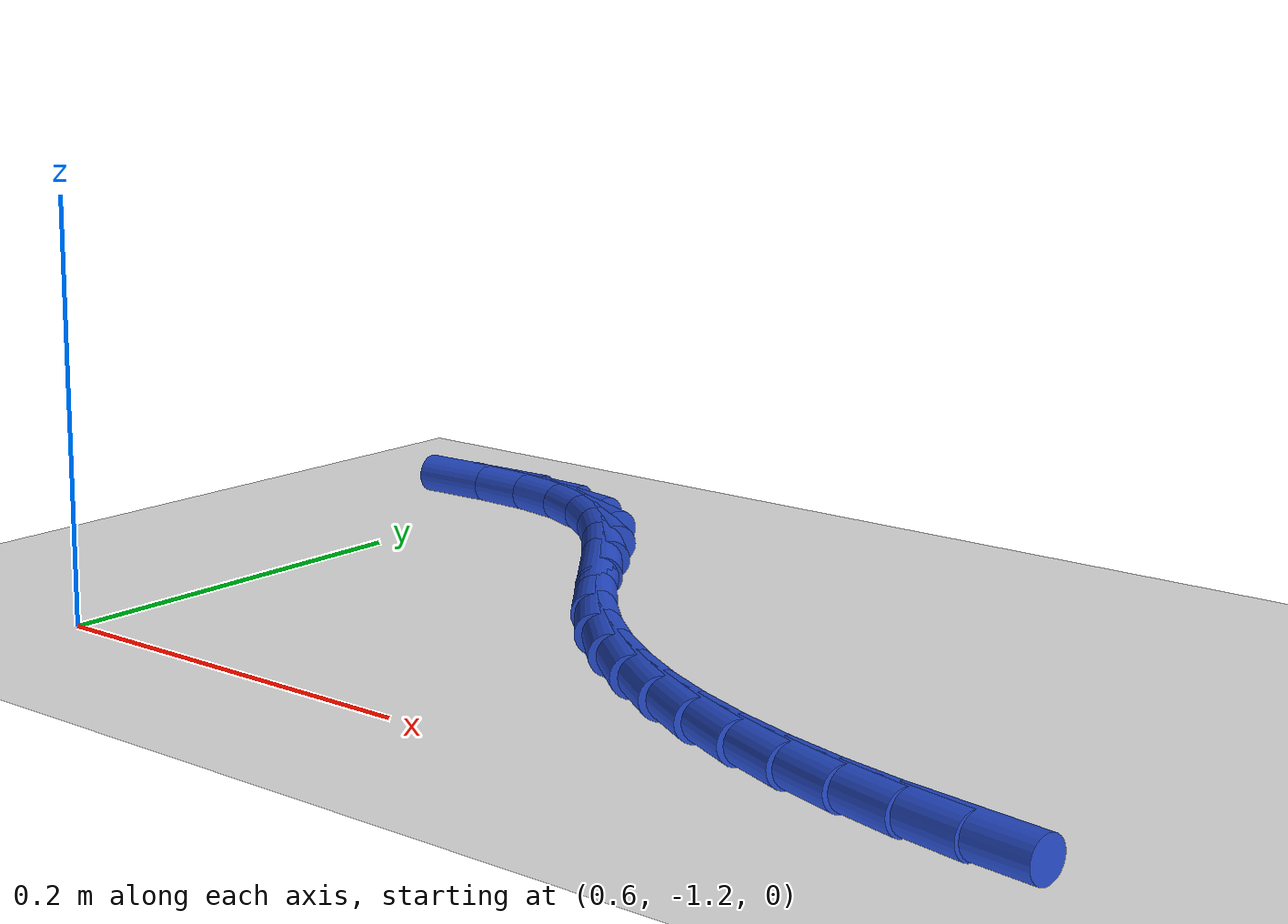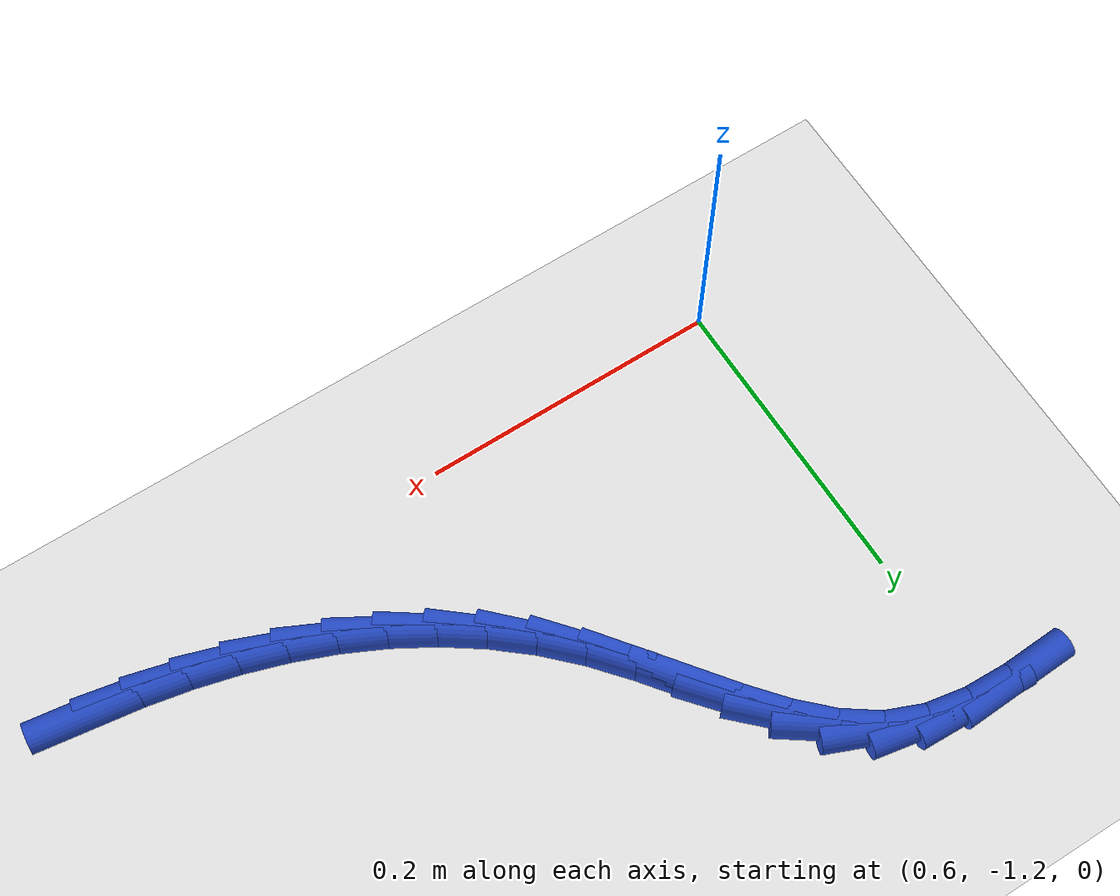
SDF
<sdf version="1.6">
 <world name="default">
  <model name="ground_plane">
   <static>1</static>
   <link name="link">
    <collision name="collision">
     <geometry><plane><normal>0 0 1</normal><size>100 100</size></plane></geometry>
     <surface><friction><ode><mu>100</mu><mu2>50</mu2></ode></friction></surface>
    </collision>
    <visual name="visual">
     <cast_shadows>0</cast_shadows>
     <geometry><plane><normal>0 0 1</normal><size>100 100</size></plane></geometry>
     <material>
      <script><uri>file://media/materials/scripts/gazebo.material</uri><name>Gazebo/WhiteGlow</name></script>
     </material>
    </visual>
   </link>
  </model>
  <model name="line">
   <link name="link_182">
    <pose>1.055292171759799 -1.1740942627940687 0.01 0 1.57 -0.14111357599219498</pose>
    <collision name="collision">
     <geometry><cylinder><radius>0.01</radius><length>0.08</length></cylinder></geometry>
    </collision>
    <visual name="visual">
     <material>
      <script><name>Gazebo/Blue</name><uri>file://media/materials/scripts/gazebo.material</uri></script>
     </material>
     <geometry><cylinder><radius>0.01</radius><length>0.08</length></cylinder></geometry>
    </visual>
   </link>
   <link name="link_183">
    <pose>1.0247981615709636 -1.1697623518853626 0.01 0 1.57 -0.19508059031088618</pose>
    <collision name="collision">
     <geometry><cylinder><radius>0.01</radius><length>0.08</length></cylinder></geometry>
    </collision>
    <visual name="visual">
     <material>
      <script><name>Gazebo/Blue</name><uri>file://media/materials/scripts/gazebo.material</uri></script>
     </material>
     <geometry><cylinder><radius>0.01</radius><length>0.08</length></cylinder></geometry>
    </visual>
   </link>
   <link name="link_184">
    <pose>0.9946349593202982 -1.1638022979279765 0.01 0 1.57 -0.25314765451808763</pose>
    <collision name="collision">
     <geometry><cylinder><radius>0.01</radius><length>0.08</length></cylinder></geometry>
    </collision>
    <visual name="visual">
     <material>
      <script><name>Gazebo/Blue</name><uri>file://media/materials/scripts/gazebo.material</uri></script>
     </material>
     <geometry><cylinder><radius>0.01</radius><length>0.08</length></cylinder></geometry>
    </visual>
   </link>
   <link name="link_185">
    <pose>0.9649627845757057 -1.156126180226265 0.01 0 1.57 -0.31573649914554375</pose>
    <collision name="collision">
     <geometry><cylinder><radius>0.01</radius><length>0.08</length></cylinder></geometry>
    </collision>
    <visual name="visual">
     <material>
      <script><name>Gazebo/Blue</name><uri>file://media/materials/scripts/gazebo.material</uri></script>
     </material>
     <geometry><cylinder><radius>0.01</radius><length>0.08</length></cylinder></geometry>
    </visual>
   </link>
   <link name="link_186">
    <pose>0.9359418569050924 -1.1466460780845829 0.01 0 1.57 -0.38319951899174365</pose>
    <collision name="collision">
     <geometry><cylinder><radius>0.01</radius><length>0.08</length></cylinder></geometry>
    </collision>
    <visual name="visual">
     <material>
      <script><name>Gazebo/Blue</name><uri>file://media/materials/scripts/gazebo.material</uri></script>
     </material>
     <geometry><cylinder><radius>0.01</radius><length>0.08</length></cylinder></geometry>
    </visual>
   </link>
   <link name="link_187">
    <pose>0.9077323958763612 -1.1352740708072848 0.01 0 1.57 -0.4557732440922983</pose>
    <collision name="collision">
     <geometry><cylinder><radius>0.01</radius><length>0.08</length></cylinder></geometry>
    </collision>
    <visual name="visual">
     <material>
      <script><name>Gazebo/Blue</name><uri>file://media/materials/scripts/gazebo.material</uri></script>
     </material>
     <geometry><cylinder><radius>0.01</radius><length>0.08</length></cylinder></geometry>
    </visual>
   </link>
   <link name="link_188">
    <pose>0.8804946210574168 -1.1219222376987255 0.01 0 1.57 -0.5335203384836901</pose>
    <collision name="collision">
     <geometry><cylinder><radius>0.01</radius><length>0.08</length></cylinder></geometry>
    </collision>
    <visual name="visual">
     <material>
      <script><name>Gazebo/Blue</name><uri>file://media/materials/scripts/gazebo.material</uri></script>
     </material>
     <geometry><cylinder><radius>0.01</radius><length>0.08</length></cylinder></geometry>
    </visual>
   </link>
   <link name="link_189">
    <pose>0.8543887520161632 -1.1065026580632589 0.01 0 1.57 -0.6162659433746278</pose>
    <collision name="collision">
     <geometry><cylinder><radius>0.01</radius><length>0.08</length></cylinder></geometry>
    </collision>
    <visual name="visual">
     <material>
      <script><name>Gazebo/Blue</name><uri>file://media/materials/scripts/gazebo.material</uri></script>
     </material>
     <geometry><cylinder><radius>0.01</radius><length>0.08</length></cylinder></geometry>
    </visual>
   </link>
   <link name="link_190">
    <pose>0.8295750083205048 -1.0889274112052398 0.01 0 1.57 -0.703540156030603</pose>
    <collision name="collision">
     <geometry><cylinder><radius>0.01</radius><length>0.08</length></cylinder></geometry>
    </collision>
    <visual name="visual">
     <material>
      <script><name>Gazebo/Blue</name><uri>file://media/materials/scripts/gazebo.material</uri></script>
     </material>
     <geometry><cylinder><radius>0.01</radius><length>0.08</length></cylinder></geometry>
    </visual>
   </link>
   <link name="link_191">
    <pose>0.8062136095383458 -1.0691085764290231 0.01 0 1.57 -0.7945440726208922</pose>
    <collision name="collision">
     <geometry><cylinder><radius>0.01</radius><length>0.08</length></cylinder></geometry>
    </collision>
    <visual name="visual">
     <material>
      <script><name>Gazebo/Blue</name><uri>file://media/materials/scripts/gazebo.material</uri></script>
     </material>
     <geometry><cylinder><radius>0.01</radius><length>0.08</length></cylinder></geometry>
    </visual>
   </link>
   <link name="link_192">
    <pose>0.7844647752375895 -1.0469582330389624 0.01 0 1.57 -0.8796346643457874</pose>
    <collision name="collision">
     <geometry><cylinder><radius>0.01</radius><length>0.08</length></cylinder></geometry>
    </collision>
    <visual name="visual">
     <material>
      <script><name>Gazebo/Blue</name><uri>file://media/materials/scripts/gazebo.material</uri></script>
     </material>
     <geometry><cylinder><radius>0.01</radius><length>0.08</length></cylinder></geometry>
    </visual>
   </link>
   <link name="link_193">
    <pose>0.7643373122767786 -1.022628868485362 0.01 0 1.57 -0.9258449364568463</pose>
    <collision name="collision">
     <geometry><cylinder><radius>0.01</radius><length>0.08</length></cylinder></geometry>
    </collision>
    <visual name="visual">
     <material>
      <script><name>Gazebo/Blue</name><uri>file://media/materials/scripts/gazebo.material</uri></script>
     </material>
     <geometry><cylinder><radius>0.01</radius><length>0.08</length></cylinder></geometry>
    </visual>
   </link>
   <link name="link_194">
    <pose>0.745234207421927 -0.9972348715399871 0.01 0 1.57 -0.9273083780671783</pose>
    <collision name="collision">
     <geometry><cylinder><radius>0.01</radius><length>0.08</length></cylinder></geometry>
    </collision>
    <visual name="visual">
     <material>
      <script><name>Gazebo/Blue</name><uri>file://media/materials/scripts/gazebo.material</uri></script>
     </material>
     <geometry><cylinder><radius>0.01</radius><length>0.08</length></cylinder></geometry>
    </visual>
   </link>
   <link name="link_195">
    <pose>0.726406950090325 -0.9721311735081607 0.01 0 1.57 -0.8823501241309302</pose>
    <collision name="collision">
     <geometry><cylinder><radius>0.01</radius><length>0.08</length></cylinder></geometry>
    </collision>
    <visual name="visual">
     <material>
      <script><name>Gazebo/Blue</name><uri>file://media/materials/scripts/gazebo.material</uri></script>
     </material>
     <geometry><cylinder><radius>0.01</radius><length>0.08</length></cylinder></geometry>
    </visual>
   </link>
   <link name="link_196">
    <pose>0.7071070296992628 -0.948672705695206 0.01 0 1.57 -0.7838659863805446</pose>
    <collision name="collision">
     <geometry><cylinder><radius>0.01</radius><length>0.08</length></cylinder></geometry>
    </collision>
    <visual name="visual">
     <material>
      <script><name>Gazebo/Blue</name><uri>file://media/materials/scripts/gazebo.material</uri></script>
     </material>
     <geometry><cylinder><radius>0.01</radius><length>0.08</length></cylinder></geometry>
    </visual>
   </link>
   <link name="link_197">
    <pose>0.6865859356660308 -0.9282143994064467 0.01 0 1.57 -0.6213782991779155</pose>
    <collision name="collision">
     <geometry><cylinder><radius>0.01</radius><length>0.08</length></cylinder></geometry>
    </collision>
    <visual name="visual">
     <material>
      <script><name>Gazebo/Blue</name><uri>file://media/materials/scripts/gazebo.material</uri></script>
     </material>
     <geometry><cylinder><radius>0.01</radius><length>0.08</length></cylinder></geometry>
    </visual>
   </link>
   <link name="link_198">
    <pose>0.6640951574079189 -0.9121111859472057 0.01 0 1.57 -0.3952718714892412</pose>
    <collision name="collision">
     <geometry><cylinder><radius>0.01</radius><length>0.08</length></cylinder></geometry>
    </collision>
    <visual name="visual">
     <material>
      <script><name>Gazebo/Blue</name><uri>file://media/materials/scripts/gazebo.material</uri></script>
     </material>
     <geometry><cylinder><radius>0.01</radius><length>0.08</length></cylinder></geometry>
    </visual>
   </link>
   <link name="link_199">
    <pose>0.6389389475011519 -0.9016152354474528 0.01 0 1.57 -0.1832988262365006</pose>
    <collision name="collision">
     <geometry><cylinder><radius>0.01</radius><length>0.08</length></cylinder></geometry>
    </collision>
    <visual name="visual">
     <material>
      <script><name>Gazebo/Blue</name><uri>file://media/materials/scripts/gazebo.material</uri></script>
     </material>
     <geometry><cylinder><radius>0.01</radius><length>0.08</length></cylinder></geometry>
    </visual>
   </link>
   <link name="link_200">
    <pose>0.611195138949345 -0.8964720979720735 0.01 0 1.57 -0.04005542855208999</pose>
    <collision name="collision">
     <geometry><cylinder><radius>0.01</radius><length>0.08</length></cylinder></geometry>
    </collision>
    <visual name="visual">
     <material>
      <script><name>Gazebo/Blue</name><uri>file://media/materials/scripts/gazebo.material</uri></script>
     </material>
     <geometry><cylinder><radius>0.01</radius><length>0.08</length></cylinder></geometry>
    </visual>
   </link>
   <link name="link_201">
    <pose>0.5815290334523946 -0.8952831734832777 0.01 0 1.57 0.04326686968889287</pose>
    <collision name="collision">
     <geometry><cylinder><radius>0.01</radius><length>0.08</length></cylinder></geometry>
    </collision>
    <visual name="visual">
     <material>
      <script><name>Gazebo/Blue</name><uri>file://media/materials/scripts/gazebo.material</uri></script>
     </material>
     <geometry><cylinder><radius>0.01</radius><length>0.08</length></cylinder></geometry>
    </visual>
   </link>
  </model>
 </world>
</sdf>
